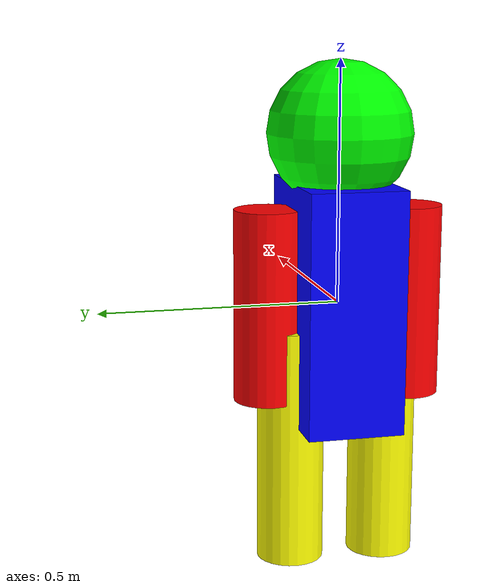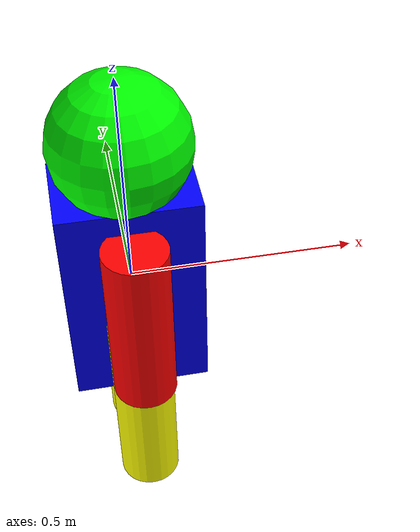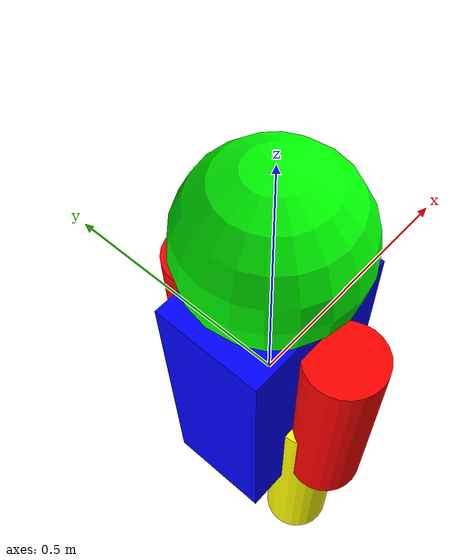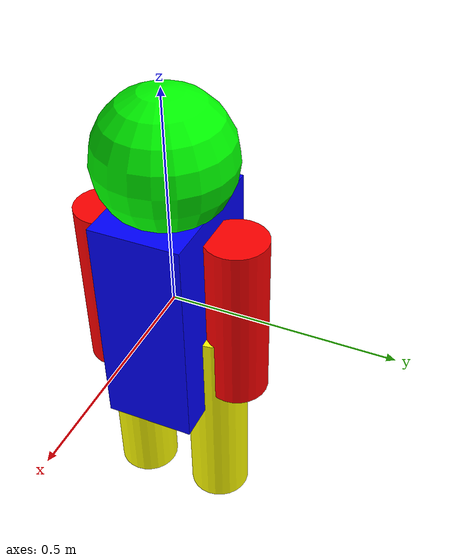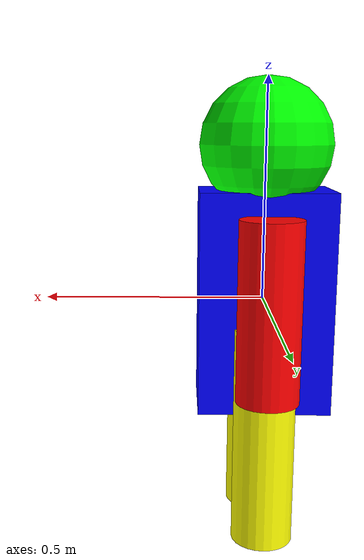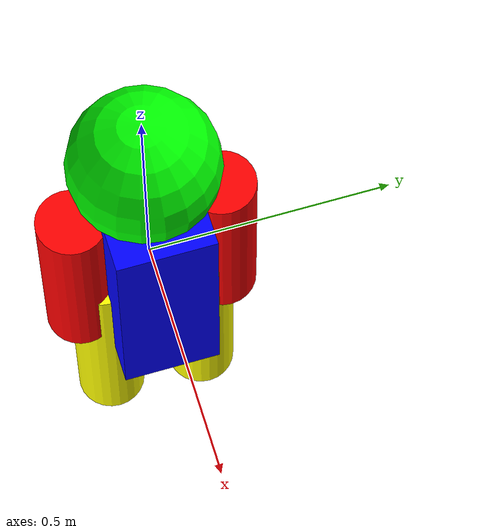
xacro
<?xml version="1.0"?>
<robot name="simple_human" xmlns:xacro="http://ros.org/wiki/xacro">
<!--torso-->
    <link name="torso">
        <visual>
            <geometry>
                <box size="0.3 0.2 0.5"/>
            </geometry>
            <material name="blue">
                <color rgba="0.0 0.0 1.0 1.0"/>
            </material>
        </visual>
    </link>
<!--head-->
    <link name="head">
        <visual>
            <geometry>
                <sphere radius="0.15"/>
            </geometry>
            <material name="green">
                <color rgba="0.0 1.0 0.0 1.0"/>
            </material>
        </visual>
    </link>
<!--neck-->
    <joint name="neck" type="fixed">
        <parent link="torso"/>
        <child link="head"/>
        <origin xyz="0 0 0.35"/>
    </joint>

<xacro:macro name="arm" params="name y_pos">
<!--arm-->
    <link name="${name}_arm">
        <visual>
            <geometry>
                <cylinder radius="0.07" length="0.4"/>
            </geometry>
            <material name="red">
                <color rgba="1.0 0.0 0.0 1.0"/>
            </material>
        </visual>
    </link>

    <joint name="${name}_shoulder" type="revolute">
        <parent link="torso"/>
        <child link="${name}_arm"/>
        <origin xyz="0 ${y_pos} 0.0"/>
        <axis xyz="0 1 0"/>
        <limit lower="-0.7" upper="0.7" effort="10" velocity="1"/>
    </joint>
</xacro:macro>

    <!-- leg-->
<xacro:macro name="leg" params="name y_pos">
    <link name="${name}_leg">
        <visual>
            <geometry>
                <cylinder radius="0.07" length="0.5"/>
            </geometry>
            <material name="yellow">
                <color rgba="1.0 1.0 0.0 1.0"/>
            </material>
        </visual>
    </link>

    <joint name="${name}_hip" type="revolute">
        <parent link="torso"/>
        <child link="${name}_leg"/>
        <origin xyz="0 ${y_pos} -0.3"/>
        <axis xyz="0 1.0 0.0"/>
        <limit lower="-0.7" upper="0.7" effort="10" velocity="1"/>
    </joint>
</xacro:macro>

<xacro:arm name="left" y_pos="0.15"/>
<xacro:arm name="right" y_pos="-0.15"/>
<xacro:leg name="left" y_pos="0.1"/>
<xacro:leg name="right" y_pos="-0.1"/>

</robot>
